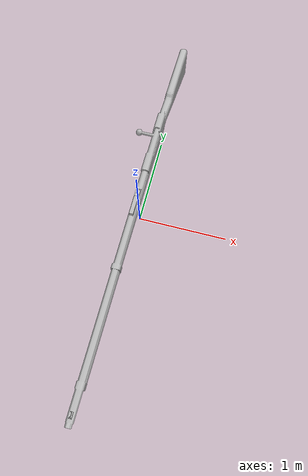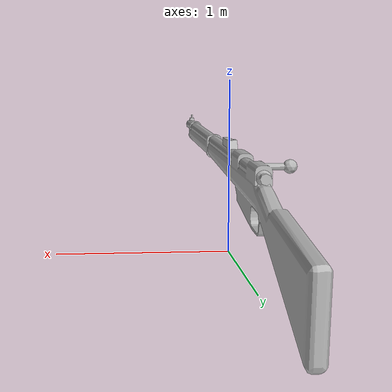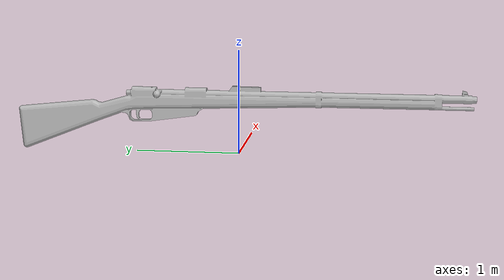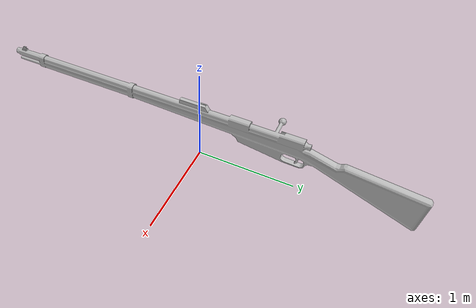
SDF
<?xml version="1.0" ?>
<sdf version="1.6">
  <model name="gun">
    <static>true</static>
    <link name="link">
      <visual name="visual">
        <geometry>
          <mesh>
            <uri>model://gun/meshes/gun.obj</uri>
          </mesh>
        </geometry>
      </visual>

      <collision name="collision">
        <geometry>
          <mesh><uri>model://gun/meshes/gun.stl</uri></mesh>
        </geometry>
      </collision>
    </link>
  </model>
</sdf>
